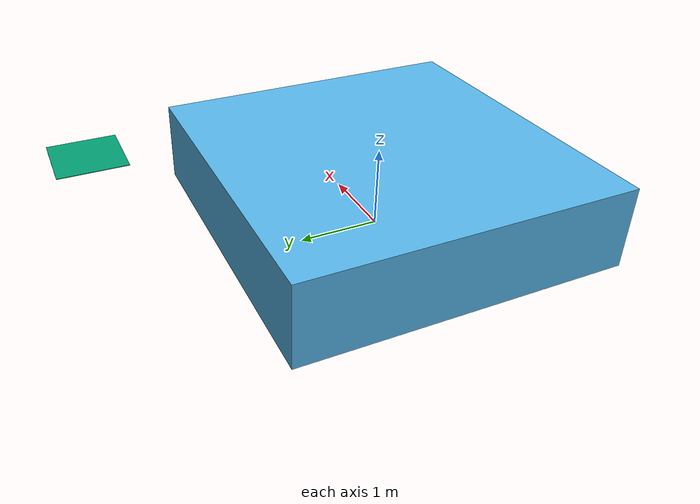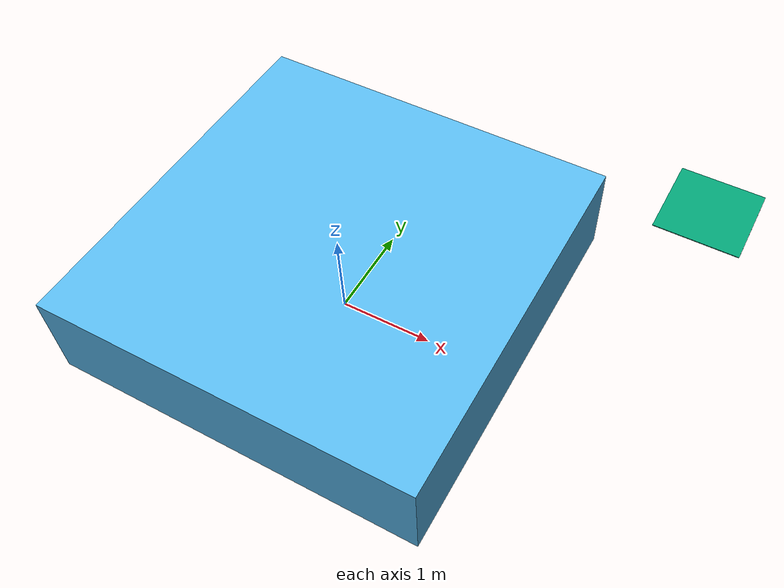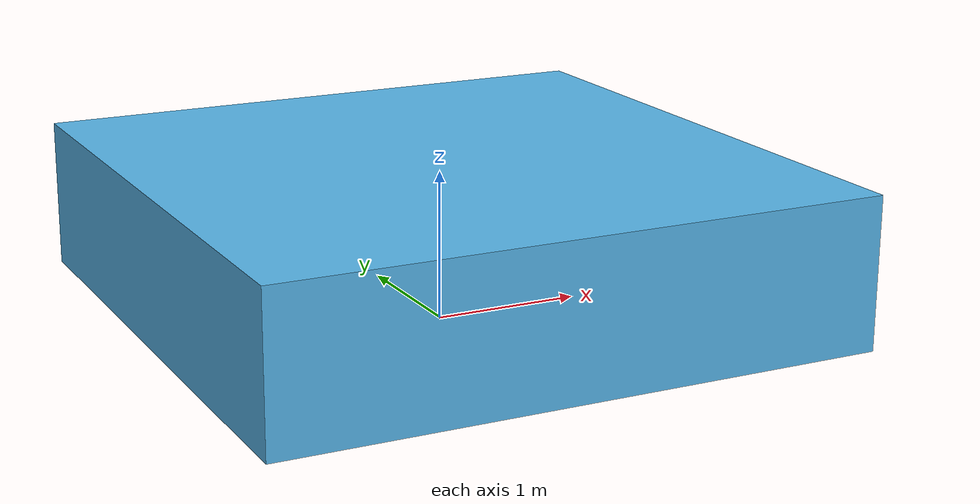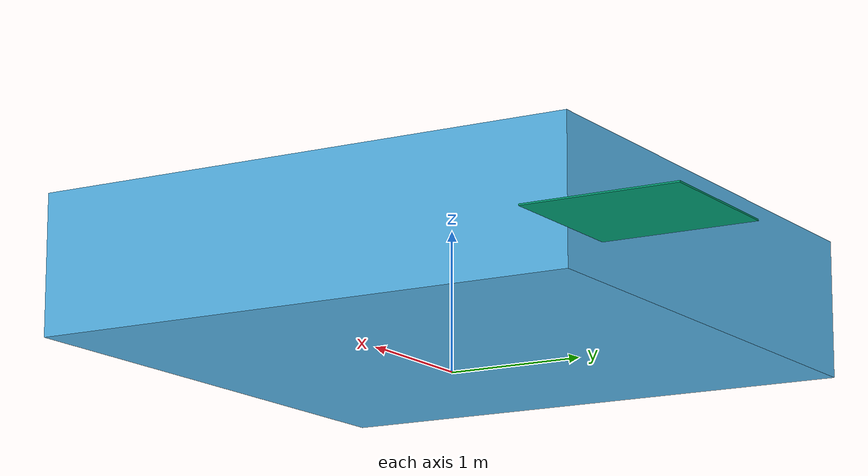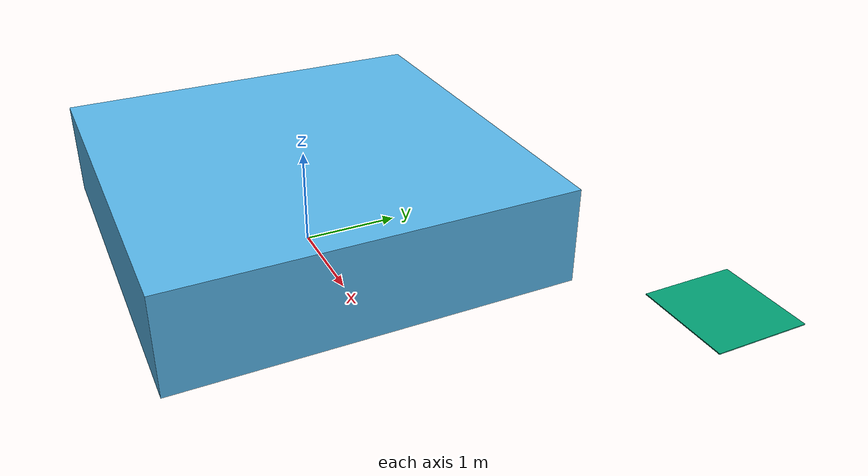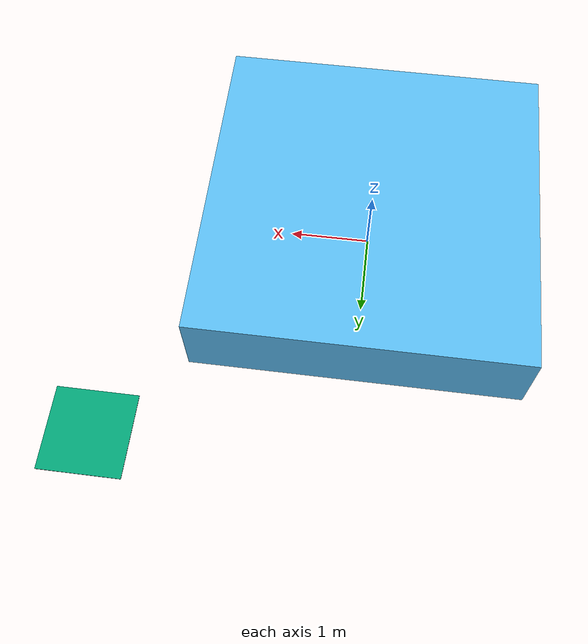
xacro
<?xml version="1.0"?>
<robot name="cs_test" xmlns:xacro="http://www.ros.org/wiki/xacro">

<link name="world"/>

    <joint name="joint1" type="fixed">
      <axis xyz="0 0 0"/>
      <origin xyz="0 0 0" rpy="0 0 0"/>
      <parent link="world"/>
      <child link="base1"/>
    </joint>

<link name="base1">
    <visual>
        <origin xyz="0 0 0.6" rpy="0 0 0"/>
      <geometry>
        <mesh filename="package://cs_test/models/box.dae" scale="4 4 1"/>
      </geometry>
    </visual>

    <collision name="base1">
        <origin xyz="0 0 0.6" rpy="0 0 0"/>
      <geometry>
        <mesh filename="package://cs_test/models/box.dae" scale="4 4 1"/>
      </geometry>
    </collision>

    <inertial>
        <origin xyz="0 0 0.6" rpy="0 0 0"/>
        <mass value="1"/>
        <inertia ixx="0.083"  ixy="0"  ixz="0" iyy="0.083" iyz="0" izz="0.083"/>
    </inertial>
</link>

    <joint name="joint2" type="fixed">
      <axis xyz="0 0 0"/>
      <origin xyz="0 0 0" rpy="0 0 0"/>
      <parent link="world"/>
      <child link="base2"/>
    </joint>

<link name="base2">
    <visual>
        <origin xyz="3 3 0.1" rpy="0 0 0"/>
      <geometry>
        <mesh filename="package://cs_test/models/box.dae" scale="1 1 0.01"/>
      </geometry>
    </visual>

    <collision name="base2">
        <origin xyz="3 3 0.1" rpy="0 0 0"/>
      <geometry>
        <mesh filename="package://cs_test/models/box.dae" scale="1 1 0.01"/>
      </geometry>
    </collision>

    <inertial>
        <origin xyz="3 3 0.1" rpy="0 0 0"/>
        <mass value="1"/>
        <inertia ixx="0.083"  ixy="0"  ixz="0" iyy="0.083" iyz="0" izz="0.083"/>
    </inertial>
</link>

<gazebo reference="base1">
    <mu1 value="200" />
    <mu2 value="100" />
    <selfCollide>true</selfCollide>
    <sensor name="contact_sensor" type="contact">
    <always_on>true</always_on>
    <update_rate>100.0</update_rate>
    <contact>
      <collision>base1_collision</collision>
    </contact>
    <plugin name="cs_test" filename="libcs_test.so">
      <bumperTopicName>state1</bumperTopicName>
      <frameName>base1</frameName>
    </plugin>
   </sensor>
</gazebo>

<gazebo reference="base2">
    <mu1 value="200" />
    <mu2 value="100" />
    <selfCollide>true</selfCollide>
    <sensor name="contact_sensor" type="contact">
    <always_on>true</always_on>
    <update_rate>100.0</update_rate>
    <contact>
      <collision>base2_collision</collision>
    </contact>
    <plugin name="cs_test" filename="libcs_test.so">
      <bumperTopicName>state2</bumperTopicName>
      <frameName>base2</frameName>
    </plugin>
   </sensor>
</gazebo>

</robot>
